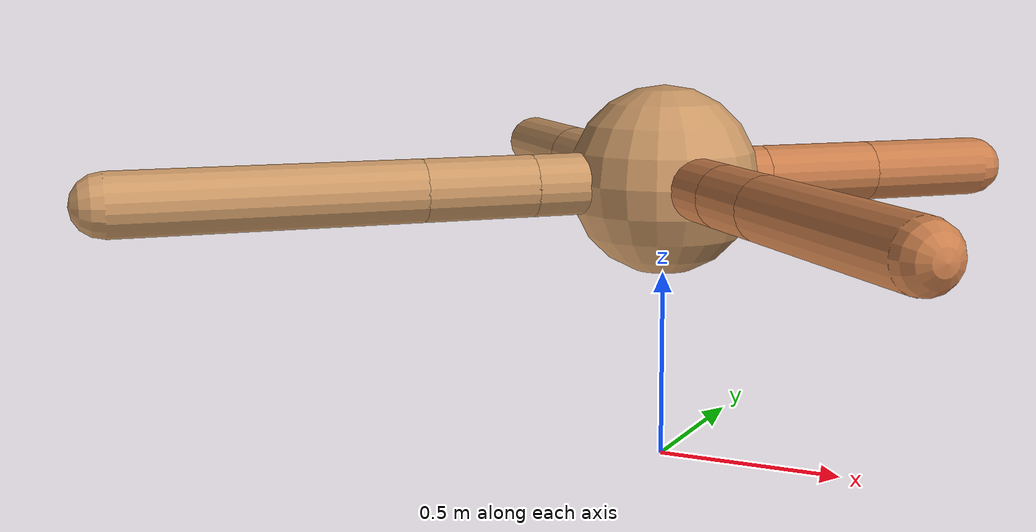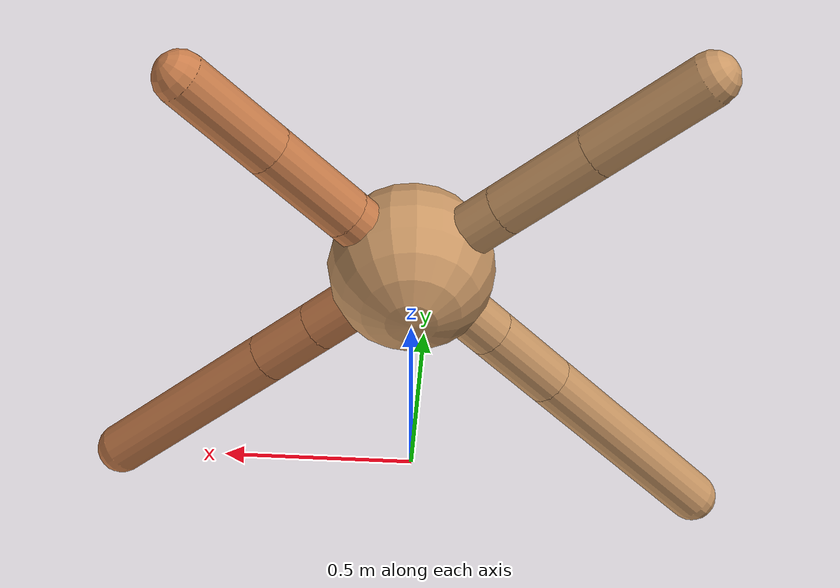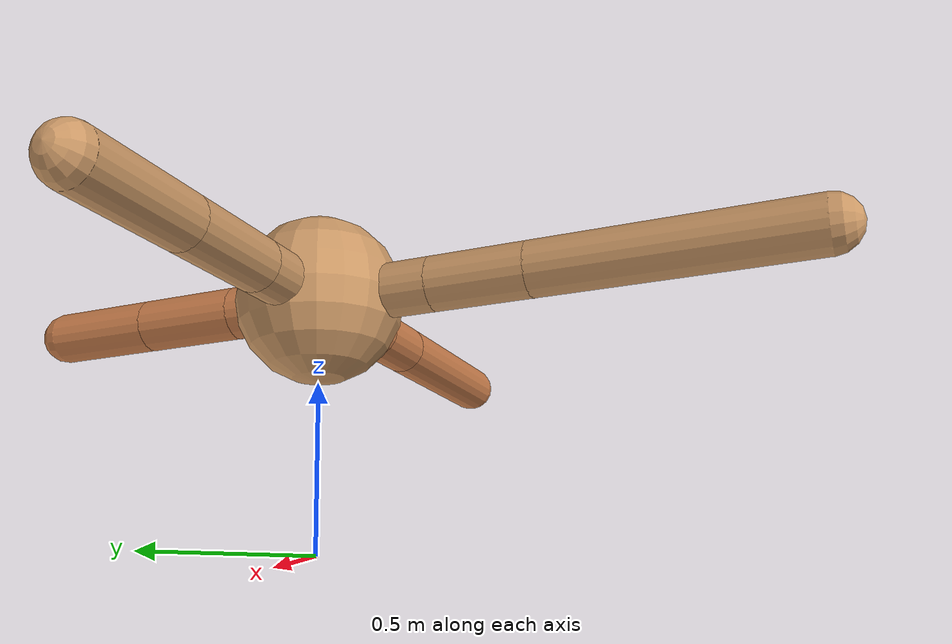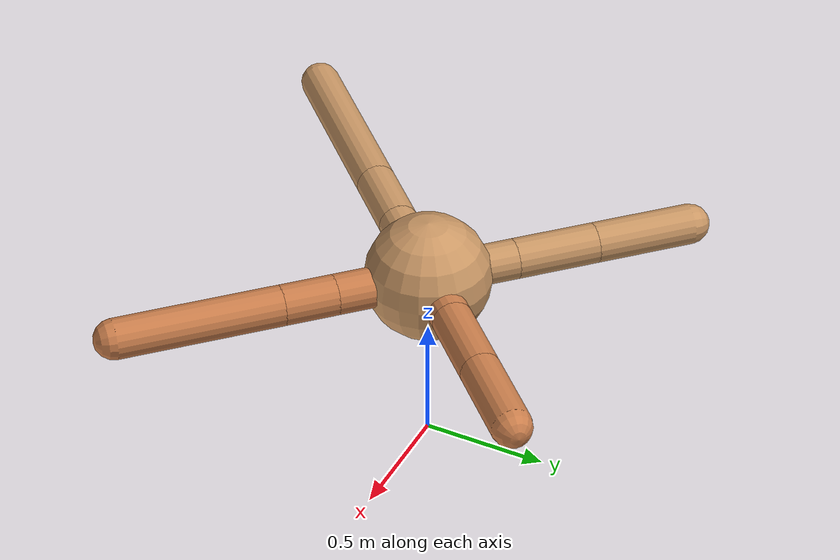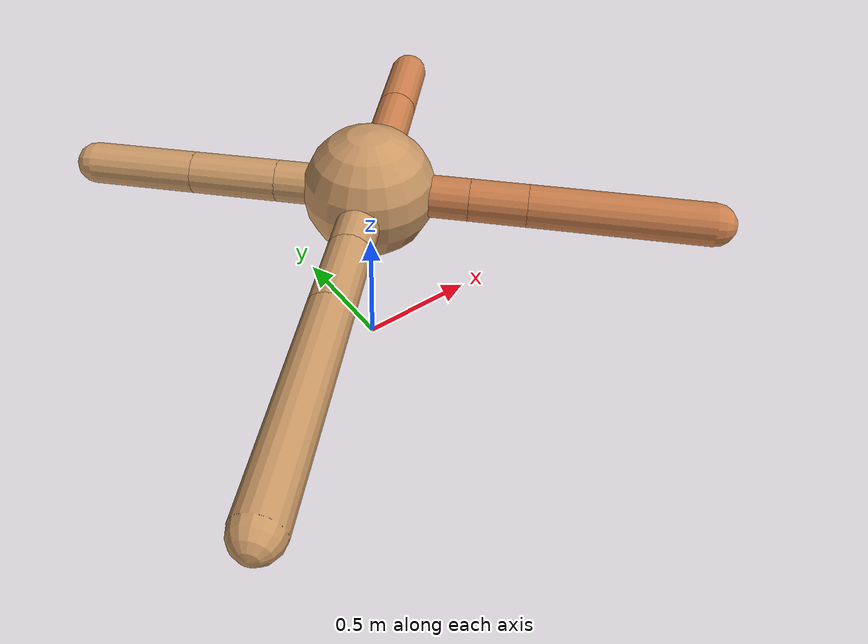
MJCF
<mujoco model="ant">
  <compiler angle="degree" coordinate="local" inertiafromgeom="true" />
  <option integrator="RK4" timestep="0.01" />
  <custom>
    <numeric data="0.0 0.0 0.55 1.0 0.0 0.0 0.0 0.0 1.0 0.0 -1.0 0.0 -1.0 0.0 1.0" name="init_qpos" />
  </custom>
  <default>
    <joint armature="1" damping="1" limited="true" />
    <geom conaffinity="0" condim="3" density="5.0" friction="1.5 0.1 0.1" margin="0.01" rgba="0.8 0.6 0.4 1" />
  </default>
  <worldbody>
    <body name="torso" pos="0 0 0.75">
      <geom name="torso_geom" pos="0 0 0" size="0.25" type="sphere" />

      <body name="front_left_leg" pos="0 0 0">
        <geom fromto="0.0 0.0 0.0 0.20112367892909933 0.20112367892909933 0.0" name="aux_1_geom" size="0.08" type="capsule" rgba=".8 .5 .3 1" />
        <body name="aux_1" pos="0.20112367892909933 0.20112367892909933 0.0">
          <joint axis="0 0 1" name="hip_1" pos="0.0 0.0 0.0" range="-40 40" type="hinge" />
          <geom fromto="0.0 0.0 0.0 0.22745830140597328 0.22745830140597328 0.0" name="left_leg_geom" size="0.08" type="capsule" rgba=".8 .5 .3 1" />
          <body pos="0.22745830140597328 0.22745830140597328 0.0" name="front_left_foot">
            <joint axis="-1 1 0" name="ankle_1" pos="0.0 0.0 0.0" range="30 100" type="hinge" />
            <geom fromto="0.0 0.0 0.0 0.24312985802921047 0.24312985802921047 0.0" name="left_ankle_geom" size="0.08" type="capsule" rgba=".8 .5 .3 1" />
          </body>
        </body>
      </body>
      <body name="front_right_leg" pos="0 0 0">
        <geom fromto="0.0 0.0 0.0 -0.24949071890214394 0.24949071890214394 0.0" name="aux_2_geom" size="0.08" type="capsule" />
        <body name="aux_2" pos="-0.24949071890214394 0.24949071890214394 0.0">
          <joint axis="0 0 1" name="hip_2" pos="0.0 0.0 0.0" range="-40 40" type="hinge" />
          <geom fromto="0.0 0.0 0.0 -0.23349181877253491 0.23349181877253491 0.0" name="right_leg_geom" size="0.08" type="capsule" />
          <body pos="-0.23349181877253491 0.23349181877253491 0.0" name="front_right_foot">
            <joint axis="1 1 0" name="ankle_2" pos="0.0 0.0 0.0" range="-100 -30" type="hinge" />
            <geom fromto="0.0 0.0 0.0 -0.28290456097168487 0.28290456097168487 0.0" name="right_ankle_geom" size="0.08" type="capsule" />
          </body>
        </body>
      </body>
      <body name="left_back_leg" pos="0 0 0">
        <geom fromto="0.0 0.0 0.0 -0.25920797514965555 -0.25920797514965555 0.0" name="aux_3_geom" size="0.08" type="capsule" />
        <body name="aux_3" pos="-0.25920797514965555 -0.25920797514965555 0.0">
          <joint axis="0 0 1" name="hip_3" pos="0.0 0.0 0.0" range="-40 40" type="hinge" />
          <geom fromto="0.0 0.0 0.0 -0.2020507332572158 -0.2020507332572158 0.0" name="back_leg_geom" size="0.08" type="capsule" />
          <body pos="-0.2020507332572158 -0.2020507332572158 0.0" name="left_back_foot">
            <joint axis="-1 1 0" name="ankle_3" pos="0.0 0.0 0.0" range="-100 -30" type="hinge" />
            <geom fromto="0.0 0.0 0.0 -0.5391978992224064 -0.5391978992224064 0.0" name="third_ankle_geom" size="0.08" type="capsule" />
          </body>
        </body>
      </body>
      <body name="right_back_leg" pos="0 0 0">
        <geom fromto="0.0 0.0 0.0 0.2653752980927628 -0.2653752980927628 0.0" name="aux_4_geom" size="0.08" type="capsule" rgba=".8 .5 .3 1" />
        <body name="aux_4" pos="0.2653752980927628 -0.2653752980927628 0.0">
          <joint axis="0 0 1" name="hip_4" pos="0.0 0.0 0.0" range="-40 40" type="hinge" />
          <geom fromto="0.0 0.0 0.0 0.1503787955542383 -0.1503787955542383 0.0" name="rightback_leg_geom" size="0.08" type="capsule" rgba=".8 .5 .3 1" />
          <body pos="0.1503787955542383 -0.1503787955542383 0.0" name="right_back_foot">
            <joint axis="1 1 0" name="ankle_4" pos="0.0 0.0 0.0" range="30 100" type="hinge" />
            <geom fromto="0.0 0.0 0.0 0.4643418372567618 -0.4643418372567618 0.0" name="fourth_ankle_geom" size="0.08" type="capsule" rgba=".8 .5 .3 1" />
          </body>
        </body>
      </body>
    </body>
  </worldbody>
  <actuator>
    <motor ctrllimited="true" ctrlrange="-1.0 1.0" joint="hip_4" gear="150" />
    <motor ctrllimited="true" ctrlrange="-1.0 1.0" joint="ankle_4" gear="150" />
    <motor ctrllimited="true" ctrlrange="-1.0 1.0" joint="hip_1" gear="150" />
    <motor ctrllimited="true" ctrlrange="-1.0 1.0" joint="ankle_1" gear="150" />
    <motor ctrllimited="true" ctrlrange="-1.0 1.0" joint="hip_2" gear="150" />
    <motor ctrllimited="true" ctrlrange="-1.0 1.0" joint="ankle_2" gear="150" />
    <motor ctrllimited="true" ctrlrange="-1.0 1.0" joint="hip_3" gear="150" />
    <motor ctrllimited="true" ctrlrange="-1.0 1.0" joint="ankle_3" gear="150" />
  </actuator>
</mujoco>
